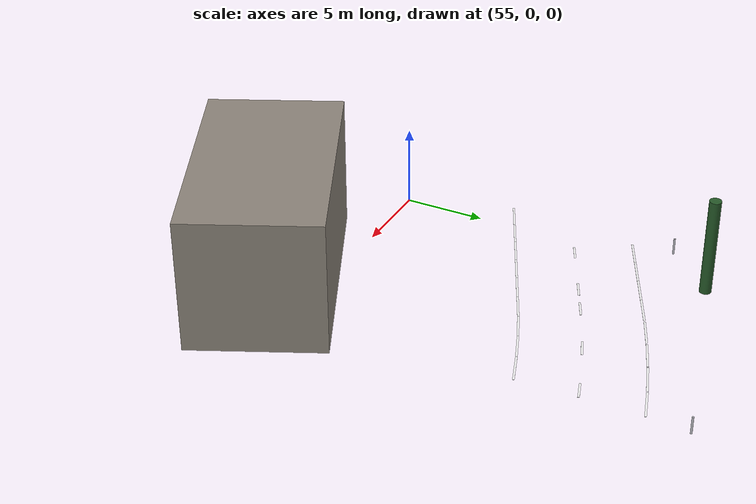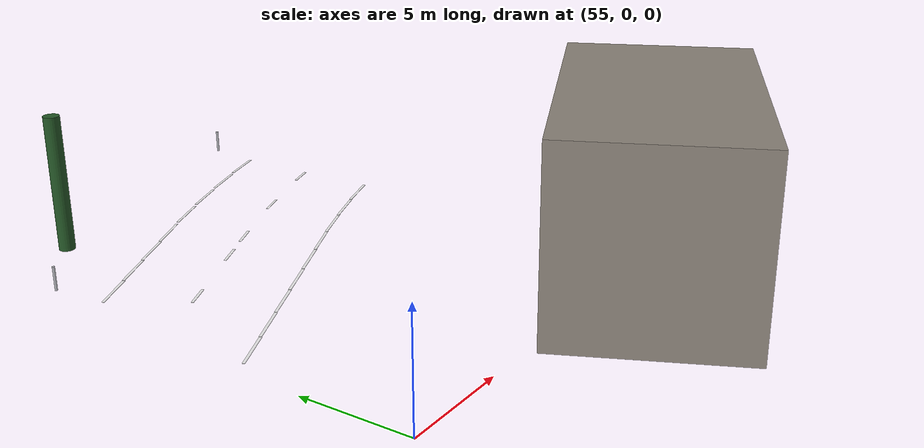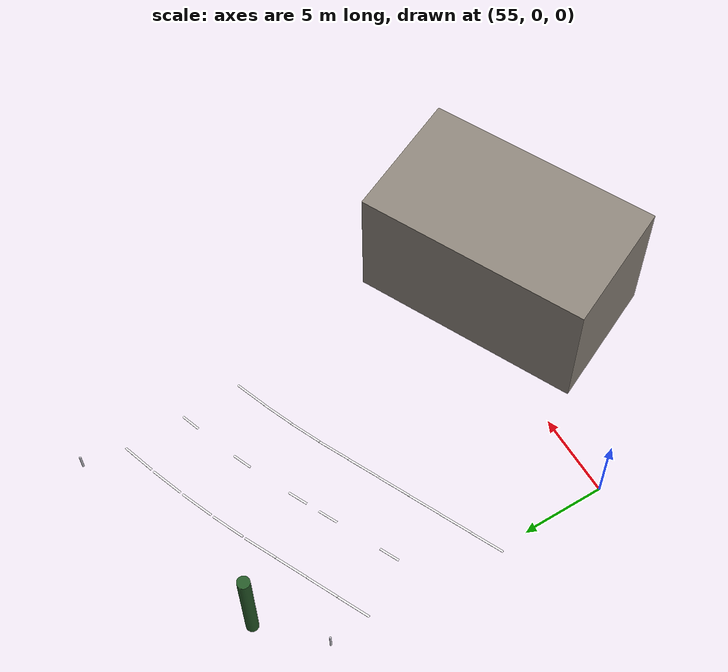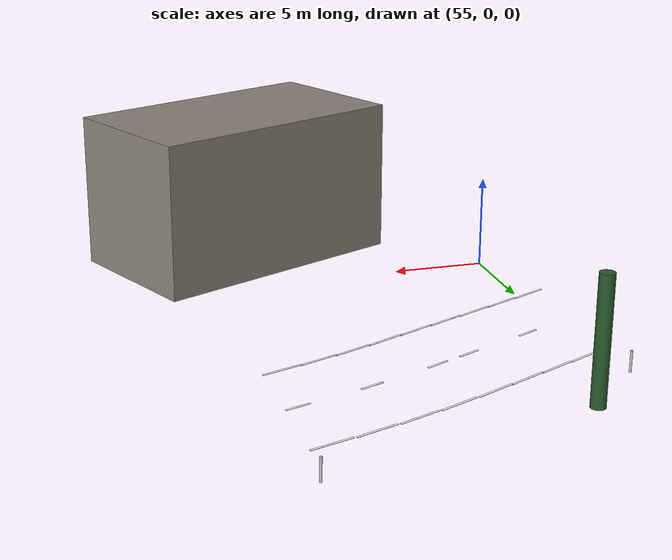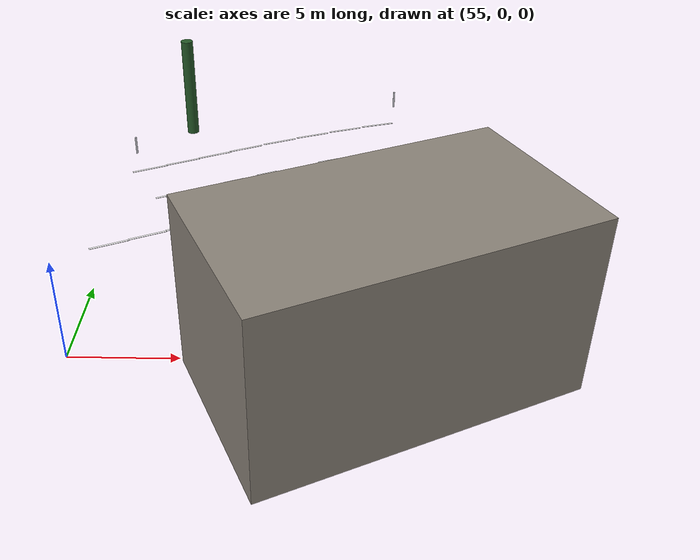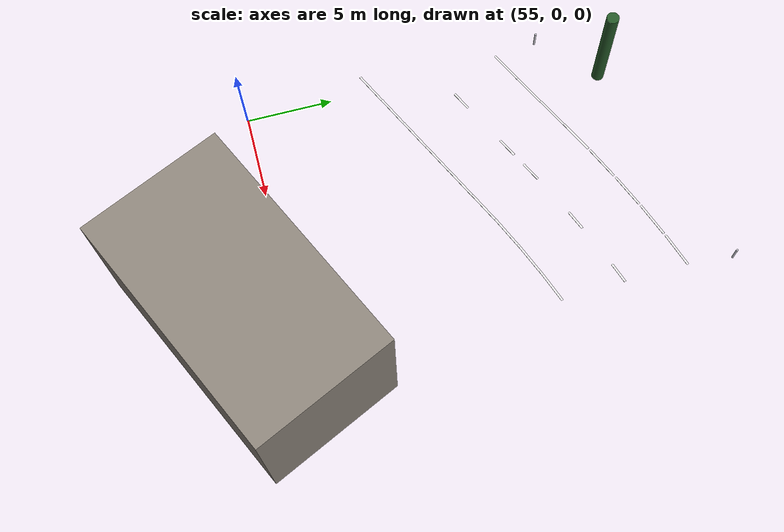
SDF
<sdf version="1.4">
 <world name="marathon_course">
  <include><uri>model://sun</uri></include>
  <model name="paint_left_edge_30">
   <static>true</static>
   <pose>56.014043274743095 15.451067800631806 0.9977287622526303 0 0 0.4363323129985824</pose>
   <link name="link">
    <visual name="visual">
     <geometry><box><size>2.05 0.12 0.02</size></box></geometry>
     <material><ambient>0.95 0.95 0.95 1</ambient><diffuse>0.95 0.95 0.95 1</diffuse></material>
    </visual>
   </link>
  </model>
  <model name="paint_left_edge_31">
   <static>true</static>
   <pose>57.8266588488164 16.296304324113205 1.0293680847879783 0 0 0.4363323129985824</pose>
   <link name="link">
    <visual name="visual">
     <geometry><box><size>2.05 0.12 0.02</size></box></geometry>
     <material><ambient>0.95 0.95 0.95 1</ambient><diffuse>0.95 0.95 0.95 1</diffuse></material>
    </visual>
   </link>
  </model>
  <model name="paint_left_edge_32">
   <static>true</static>
   <pose>59.6392744228897 17.141540847594605 1.061007407323326 0 0 0.4363323129985824</pose>
   <link name="link">
    <visual name="visual">
     <geometry><box><size>2.05 0.12 0.02</size></box></geometry>
     <material><ambient>0.95 0.95 0.95 1</ambient><diffuse>0.95 0.95 0.95 1</diffuse></material>
    </visual>
   </link>
  </model>
  <model name="paint_left_edge_33">
   <static>true</static>
   <pose>61.451889996963 17.986777371076002 1.092646729858674 0 0 0.4363323129985824</pose>
   <link name="link">
    <visual name="visual">
     <geometry><box><size>2.05 0.12 0.02</size></box></geometry>
     <material><ambient>0.95 0.95 0.95 1</ambient><diffuse>0.95 0.95 0.95 1</diffuse></material>
    </visual>
   </link>
  </model>
  <model name="paint_left_edge_34">
   <static>true</static>
   <pose>63.45191028217373 18.87885296567287 1.1275572137947794 0 0 0.40276828892176836</pose>
   <link name="link">
    <visual name="visual">
     <geometry><box><size>2.05 0.12 0.02</size></box></geometry>
     <material><ambient>0.95 0.95 0.95 1</ambient><diffuse>0.95 0.95 0.95 1</diffuse></material>
    </visual>
   </link>
  </model>
  <model name="paint_left_edge_35">
   <static>true</static>
   <pose>65.48074014329137 19.703310000555316 1.1629705707488946 0 0 0.36920426484495433</pose>
   <link name="link">
    <visual name="visual">
     <geometry><box><size>2.05 0.12 0.02</size></box></geometry>
     <material><ambient>0.95 0.95 0.95 1</ambient><diffuse>0.95 0.95 0.95 1</diffuse></material>
    </visual>
   </link>
  </model>
  <model name="paint_left_edge_36">
   <static>true</static>
   <pose>67.53609422935044 20.459219776024682 1.1988469097715329 0 0 0.3356402407681403</pose>
   <link name="link">
    <visual name="visual">
     <geometry><box><size>2.05 0.12 0.02</size></box></geometry>
     <material><ambient>0.95 0.95 0.95 1</ambient><diffuse>0.95 0.95 0.95 1</diffuse></material>
    </visual>
   </link>
  </model>
  <model name="paint_left_edge_37">
   <static>true</static>
   <pose>69.61565731149165 21.145730806617188 1.235145818392632 0 0 0.3020762166913262</pose>
   <link name="link">
    <visual name="visual">
     <geometry><box><size>2.05 0.12 0.02</size></box></geometry>
     <material><ambient>0.95 0.95 0.95 1</ambient><diffuse>0.95 0.95 0.95 1</diffuse></material>
    </visual>
   </link>
  </model>
  <model name="paint_right_edge_28">
   <static>true</static>
   <pose>55.34713995878139 7.41644024441246 0.9860879215716751 0 0 0.4363323129985824</pose>
   <link name="link">
    <visual name="visual">
     <geometry><box><size>2.05 0.12 0.02</size></box></geometry>
     <material><ambient>0.95 0.95 0.95 1</ambient><diffuse>0.95 0.95 0.95 1</diffuse></material>
    </visual>
   </link>
  </model>
  <model name="paint_right_edge_29">
   <static>true</static>
   <pose>57.15975553285469 8.261676767893858 1.0177272441070229 0 0 0.4363323129985824</pose>
   <link name="link">
    <visual name="visual">
     <geometry><box><size>2.05 0.12 0.02</size></box></geometry>
     <material><ambient>0.95 0.95 0.95 1</ambient><diffuse>0.95 0.95 0.95 1</diffuse></material>
    </visual>
   </link>
  </model>
  <model name="paint_right_edge_30">
   <static>true</static>
   <pose>58.97237110692799 9.106913291375257 1.0493665666423708 0 0 0.4363323129985824</pose>
   <link name="link">
    <visual name="visual">
     <geometry><box><size>2.05 0.12 0.02</size></box></geometry>
     <material><ambient>0.95 0.95 0.95 1</ambient><diffuse>0.95 0.95 0.95 1</diffuse></material>
    </visual>
   </link>
  </model>
  <model name="paint_right_edge_31">
   <static>true</static>
   <pose>60.78498668100129 9.952149814856655 1.0810058891777188 0 0 0.4363323129985824</pose>
   <link name="link">
    <visual name="visual">
     <geometry><box><size>2.05 0.12 0.02</size></box></geometry>
     <material><ambient>0.95 0.95 0.95 1</ambient><diffuse>0.95 0.95 0.95 1</diffuse></material>
    </visual>
   </link>
  </model>
  <model name="paint_right_edge_32">
   <static>true</static>
   <pose>62.59760225507459 10.797386338338056 1.1126452117130665 0 0 0.4363323129985824</pose>
   <link name="link">
    <visual name="visual">
     <geometry><box><size>2.05 0.12 0.02</size></box></geometry>
     <material><ambient>0.95 0.95 0.95 1</ambient><diffuse>0.95 0.95 0.95 1</diffuse></material>
    </visual>
   </link>
  </model>
  <model name="paint_right_edge_33">
   <static>true</static>
   <pose>64.4102178291479 11.642622861819452 1.1442845342484145 0 0 0.4363323129985824</pose>
   <link name="link">
    <visual name="visual">
     <geometry><box><size>2.05 0.12 0.02</size></box></geometry>
     <material><ambient>0.95 0.95 0.95 1</ambient><diffuse>0.95 0.95 0.95 1</diffuse></material>
    </visual>
   </link>
  </model>
  <model name="paint_right_edge_34">
   <static>true</static>
   <pose>66.19567655119425 12.438996860061103 1.175449832168386 0 0 0.40276828892176836</pose>
   <link name="link">
    <visual name="visual">
     <geometry><box><size>2.05 0.12 0.02</size></box></geometry>
     <material><ambient>0.95 0.95 0.95 1</ambient><diffuse>0.95 0.95 0.95 1</diffuse></material>
    </visual>
   </link>
  </model>
  <model name="paint_right_edge_35">
   <static>true</static>
   <pose>68.00685416667476 13.175006396948495 1.2070640550431326 0 0 0.36920426484495433</pose>
   <link name="link">
    <visual name="visual">
     <geometry><box><size>2.05 0.12 0.02</size></box></geometry>
     <material><ambient>0.95 0.95 0.95 1</ambient><diffuse>0.95 0.95 0.95 1</diffuse></material>
    </visual>
   </link>
  </model>
  <model name="paint_right_edge_36">
   <static>true</static>
   <pose>69.841710496375 13.84982240340199 1.2390915914120013 0 0 0.3356402407681403</pose>
   <link name="link">
    <visual name="visual">
     <geometry><box><size>2.05 0.12 0.02</size></box></geometry>
     <material><ambient>0.95 0.95 0.95 1</ambient><diffuse>0.95 0.95 0.95 1</diffuse></material>
    </visual>
   </link>
  </model>
  <model name="paint_divider_16">
   <static>true</static>
   <pose>57.49320719083554 12.27899054600353 1.0235476644475006 0 0 0.4363323129985824</pose>
   <link name="link">
    <visual name="visual">
     <geometry><box><size>1.2 0.12 0.02</size></box></geometry>
     <material><ambient>0.95 0.95 0.95 1</ambient><diffuse>0.95 0.95 0.95 1</diffuse></material>
    </visual>
   </link>
  </model>
  <model name="paint_divider_17">
   <static>true</static>
   <pose>61.118438338982145 13.96946359296633 1.0868263095181963 0 0 0.4363323129985824</pose>
   <link name="link">
    <visual name="visual">
     <geometry><box><size>1.2 0.12 0.02</size></box></geometry>
     <material><ambient>0.95 0.95 0.95 1</ambient><diffuse>0.95 0.95 0.95 1</diffuse></material>
    </visual>
   </link>
  </model>
  <model name="paint_divider_18">
   <static>true</static>
   <pose>62.93105391305544 14.814700116447726 1.1184656320535442 0 0 0.4363323129985824</pose>
   <link name="link">
    <visual name="visual">
     <geometry><box><size>1.2 0.12 0.02</size></box></geometry>
     <material><ambient>0.95 0.95 0.95 1</ambient><diffuse>0.95 0.95 0.95 1</diffuse></material>
    </visual>
   </link>
  </model>
  <model name="paint_divider_19">
   <static>true</static>
   <pose>66.46792332091874 16.3316482457142 1.1802019172104246 0 0 0.37399912542735636</pose>
   <link name="link">
    <visual name="visual">
     <geometry><box><size>1.2 0.12 0.02</size></box></geometry>
     <material><ambient>0.95 0.95 0.95 1</ambient><diffuse>0.95 0.95 0.95 1</diffuse></material>
    </visual>
   </link>
  </model>
  <model name="paint_divider_20">
   <static>true</static>
   <pose>70.09241882291023 17.625328728371244 1.2434677215297185 0 0 0.3116659378561303</pose>
   <link name="link">
    <visual name="visual">
     <geometry><box><size>1.2 0.12 0.02</size></box></geometry>
     <material><ambient>0.95 0.95 0.95 1</ambient><diffuse>0.95 0.95 0.95 1</diffuse></material>
    </visual>
   </link>
  </model>
  <model name="building_1">
   <static>true</static>
   <pose>68.4571109997587 -2.1934152062050725 5.194923317298986 0 0 0.4363323129985824</pose>
   <link name="link">
    <collision name="collision"><geometry><box><size>14.0 8.0 8.0</size></box></geometry></collision>
    <visual name="visual">
     <geometry><box><size>14.0 8.0 8.0</size></box></geometry>
     <material><ambient>0.55 0.52 0.48 1</ambient><diffuse>0.55 0.52 0.48 1</diffuse></material>
    </visual>
   </link>
  </model>
  <model name="tree_1">
   <static>true</static>
   <pose>57.891654456241206 20.464279469711176 4.010502587335627 0 0 0.4363323129985824</pose>
   <link name="link">
    <collision name="collision">
     <geometry><cylinder><radius>0.35</radius><length>6.0</length></cylinder></geometry>
    </collision>
    <visual name="visual">
     <geometry><cylinder><radius>0.35</radius><length>6.0</length></cylinder></geometry>
     <material><ambient>0.15 0.35 0.16 1</ambient><diffuse>0.15 0.35 0.16 1</diffuse></material>
    </visual>
   </link>
  </model>
  <model name="barrier_3">
   <static>true</static>
   <pose>54.858088874531575 17.504975520897062 1.4825515031428793 0 0 0.4363323129985824</pose>
   <link name="link">
    <collision name="collision">
     <geometry><cylinder><radius>0.06</radius><length>1.05</length></cylinder></geometry>
    </collision>
    <visual name="visual">
     <geometry><cylinder><radius>0.06</radius><length>1.05</length></cylinder></geometry>
     <material><ambient>0.75 0.75 0.78 1</ambient><diffuse>0.75 0.75 0.78 1</diffuse></material>
    </visual>
   </link>
  </model>
  <model name="barrier_4">
   <static>true</static>
   <pose>70.82403371756195 23.951445564357584 1.7612381070183152 0 0 0.27265758504112547</pose>
   <link name="link">
    <collision name="collision">
     <geometry><cylinder><radius>0.06</radius><length>1.05</length></cylinder></geometry>
    </collision>
    <visual name="visual">
     <geometry><cylinder><radius>0.06</radius><length>1.05</length></cylinder></geometry>
     <material><ambient>0.75 0.75 0.78 1</ambient><diffuse>0.75 0.75 0.78 1</diffuse></material>
    </visual>
   </link>
  </model>
 </world>
</sdf>
